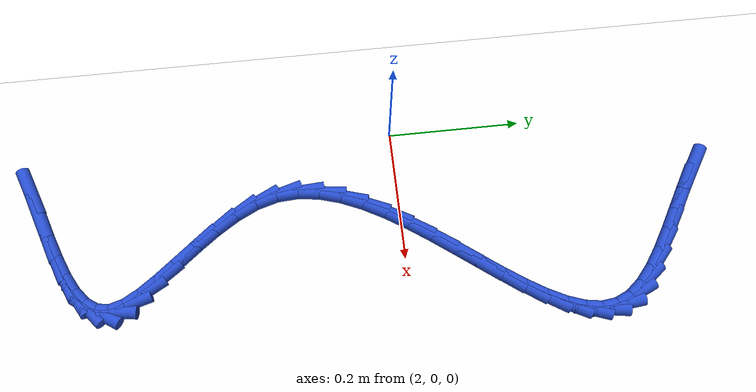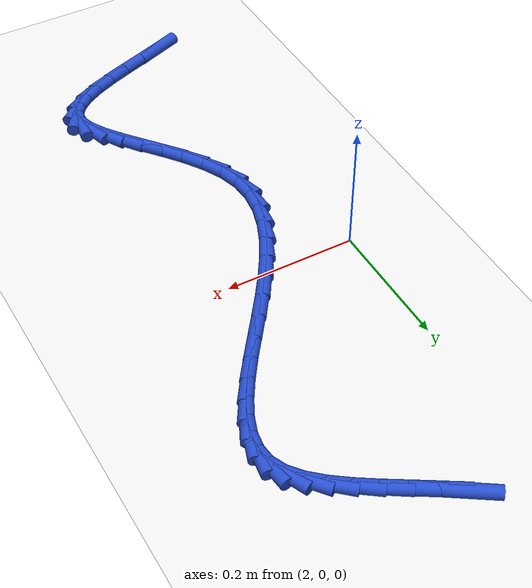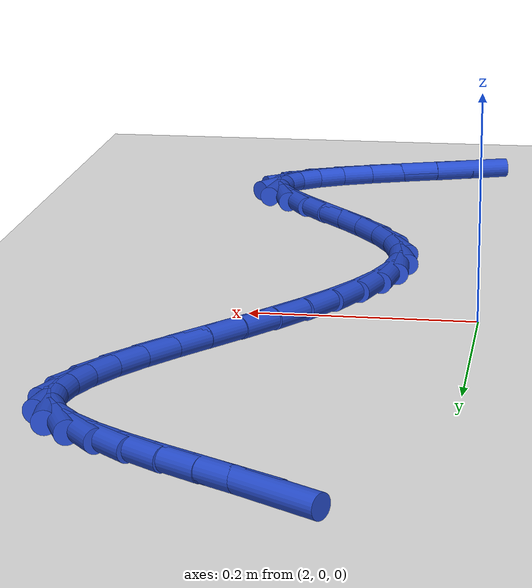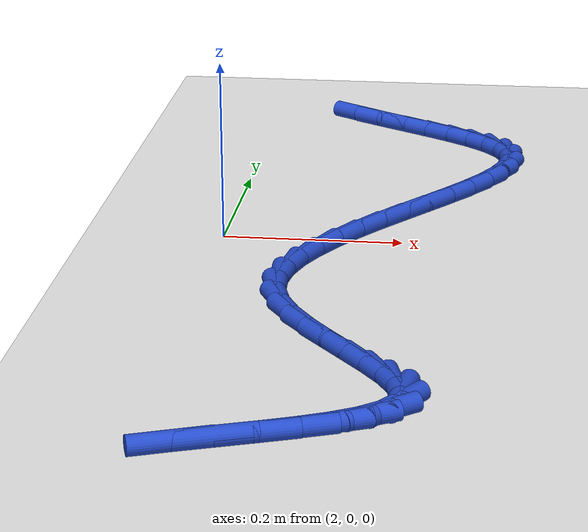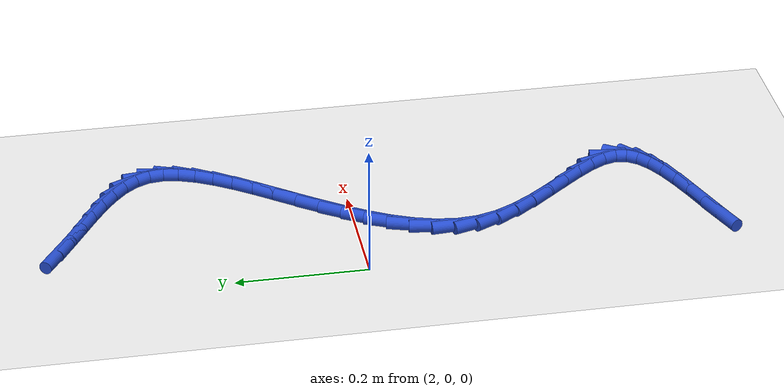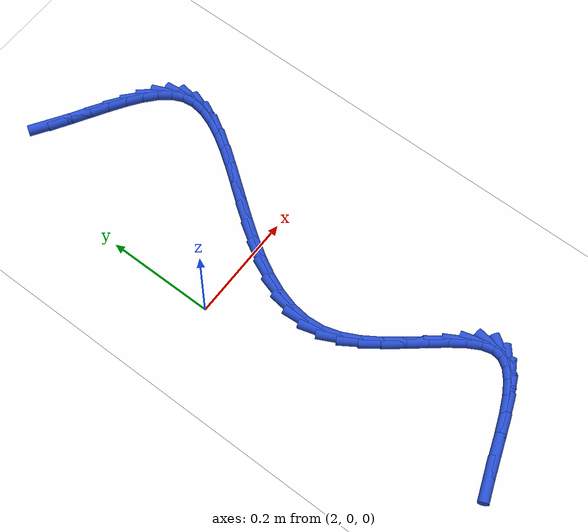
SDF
<sdf version="1.6">
 <world name="default">
  <model name="ground_plane">
   <static>1</static>
   <link name="link">
    <collision name="collision">
     <geometry><plane><normal>0 0 1</normal><size>100 100</size></plane></geometry>
     <surface><friction><ode><mu>100</mu><mu2>50</mu2></ode></friction></surface>
    </collision>
    <visual name="visual">
     <cast_shadows>0</cast_shadows>
     <geometry><plane><normal>0 0 1</normal><size>100 100</size></plane></geometry>
     <material>
      <script><uri>file://media/materials/scripts/gazebo.material</uri><name>Gazebo/WhiteGlow</name></script>
     </material>
    </visual>
   </link>
  </model>
  <model name="line">
   <link name="link_105">
    <pose>2.108060681411876 0.4472176859533394 0.01 0 1.57 -0.5757550613218255</pose>
    <collision name="collision">
     <geometry><cylinder><radius>0.01</radius><length>0.08</length></cylinder></geometry>
    </collision>
    <visual name="visual">
     <material>
      <script><name>Gazebo/Blue</name><uri>file://media/materials/scripts/gazebo.material</uri></script>
     </material>
     <geometry><cylinder><radius>0.01</radius><length>0.08</length></cylinder></geometry>
    </visual>
   </link>
   <link name="link_106">
    <pose>2.1381463226619006 0.42768854929734806 0.01 0 1.57 -0.5462385934227894</pose>
    <collision name="collision">
     <geometry><cylinder><radius>0.01</radius><length>0.08</length></cylinder></geometry>
    </collision>
    <visual name="visual">
     <material>
      <script><name>Gazebo/Blue</name><uri>file://media/materials/scripts/gazebo.material</uri></script>
     </material>
     <geometry><cylinder><radius>0.01</radius><length>0.08</length></cylinder></geometry>
    </visual>
   </link>
   <link name="link_107">
    <pose>2.1691179460862138 0.4088596052771137 0.01 0 1.57 -0.5429600679326003</pose>
    <collision name="collision">
     <geometry><cylinder><radius>0.01</radius><length>0.08</length></cylinder></geometry>
    </collision>
    <visual name="visual">
     <material>
      <script><name>Gazebo/Blue</name><uri>file://media/materials/scripts/gazebo.material</uri></script>
     </material>
     <geometry><cylinder><radius>0.01</radius><length>0.08</length></cylinder></geometry>
    </visual>
   </link>
   <link name="link_108">
    <pose>2.1997096694271723 0.39039871000961607 0.01 0 1.57 -0.5668483720270161</pose>
    <collision name="collision">
     <geometry><cylinder><radius>0.01</radius><length>0.08</length></cylinder></geometry>
    </collision>
    <visual name="visual">
     <material>
      <script><name>Gazebo/Blue</name><uri>file://media/materials/scripts/gazebo.material</uri></script>
     </material>
     <geometry><cylinder><radius>0.01</radius><length>0.08</length></cylinder></geometry>
    </visual>
   </link>
   <link name="link_109">
    <pose>2.228655610427135 0.3719737196118356 0.01 0 1.57 -0.623429596093039</pose>
    <collision name="collision">
     <geometry><cylinder><radius>0.01</radius><length>0.08</length></cylinder></geometry>
    </collision>
    <visual name="visual">
     <material>
      <script><name>Gazebo/Blue</name><uri>file://media/materials/scripts/gazebo.material</uri></script>
     </material>
     <geometry><cylinder><radius>0.01</radius><length>0.08</length></cylinder></geometry>
    </visual>
   </link>
   <link name="link_110">
    <pose>2.254689886828461 0.3532524902007521 0.01 0 1.57 -0.724630080030883</pose>
    <collision name="collision">
     <geometry><cylinder><radius>0.01</radius><length>0.08</length></cylinder></geometry>
    </collision>
    <visual name="visual">
     <material>
      <script><name>Gazebo/Blue</name><uri>file://media/materials/scripts/gazebo.material</uri></script>
     </material>
     <geometry><cylinder><radius>0.01</radius><length>0.08</length></cylinder></geometry>
    </visual>
   </link>
   <link name="link_111">
    <pose>2.2765466163735075 0.33390287789334594 0.01 0 1.57 -0.8911156726103272</pose>
    <collision name="collision">
     <geometry><cylinder><radius>0.01</radius><length>0.08</length></cylinder></geometry>
    </collision>
    <visual name="visual">
     <material>
      <script><name>Gazebo/Blue</name><uri>file://media/materials/scripts/gazebo.material</uri></script>
     </material>
     <geometry><cylinder><radius>0.01</radius><length>0.08</length></cylinder></geometry>
    </visual>
   </link>
   <link name="link_112">
    <pose>2.2929599168046333 0.3135927388065968 0.01 0 1.57 -1.1481544546390114</pose>
    <collision name="collision">
     <geometry><cylinder><radius>0.01</radius><length>0.08</length></cylinder></geometry>
    </collision>
    <visual name="visual">
     <material>
      <script><name>Gazebo/Blue</name><uri>file://media/materials/scripts/gazebo.material</uri></script>
     </material>
     <geometry><cylinder><radius>0.01</radius><length>0.08</length></cylinder></geometry>
    </visual>
   </link>
   <link name="link_113">
    <pose>2.3026746849159005 0.2919921262910703 0.01 0 1.57 -1.461423707057212</pose>
    <collision name="collision">
     <geometry><cylinder><radius>0.01</radius><length>0.08</length></cylinder></geometry>
    </collision>
    <visual name="visual">
     <material>
      <script><name>Gazebo/Blue</name><uri>file://media/materials/scripts/gazebo.material</uri></script>
     </material>
     <geometry><cylinder><radius>0.01</radius><length>0.08</length></cylinder></geometry>
    </visual>
   </link>
   <link name="link_114">
    <pose>2.305207336102497 0.26892836231695383 0.01 0 1.57 1.4141788300972489</pose>
    <collision name="collision">
     <geometry><cylinder><radius>0.01</radius><length>0.08</length></cylinder></geometry>
    </collision>
    <visual name="visual">
     <material>
      <script><name>Gazebo/Blue</name><uri>file://media/materials/scripts/gazebo.material</uri></script>
     </material>
     <geometry><cylinder><radius>0.01</radius><length>0.08</length></cylinder></geometry>
    </visual>
   </link>
   <link name="link_115">
    <pose>2.3013480045964734 0.24448840744638323 0.01 0 1.57 1.22220584439438</pose>
    <collision name="collision">
     <geometry><cylinder><radius>0.01</radius><length>0.08</length></cylinder></geometry>
    </collision>
    <visual name="visual">
     <material>
      <script><name>Gazebo/Blue</name><uri>file://media/materials/scripts/gazebo.material</uri></script>
     </material>
     <geometry><cylinder><radius>0.01</radius><length>0.08</length></cylinder></geometry>
    </visual>
   </link>
   <link name="link_116">
    <pose>2.292006026580781 0.2187835207175746 0.01 0 1.57 1.0927776454680684</pose>
    <collision name="collision">
     <geometry><cylinder><radius>0.01</radius><length>0.08</length></cylinder></geometry>
    </collision>
    <visual name="visual">
     <material>
      <script><name>Gazebo/Blue</name><uri>file://media/materials/scripts/gazebo.material</uri></script>
     </material>
     <geometry><cylinder><radius>0.01</radius><length>0.08</length></cylinder></geometry>
    </visual>
   </link>
   <link name="link_117">
    <pose>2.2780907382383724 0.19192496116874405 0.01 0 1.57 1.008567267322888</pose>
    <collision name="collision">
     <geometry><cylinder><radius>0.01</radius><length>0.08</length></cylinder></geometry>
    </collision>
    <visual name="visual">
     <material>
      <script><name>Gazebo/Blue</name><uri>file://media/materials/scripts/gazebo.material</uri></script>
     </material>
     <geometry><cylinder><radius>0.01</radius><length>0.08</length></cylinder></geometry>
    </visual>
   </link>
   <link name="link_118">
    <pose>2.2605114757522005 0.16402398783810754 0.01 0 1.57 0.9565545803721925</pose>
    <collision name="collision">
     <geometry><cylinder><radius>0.01</radius><length>0.08</length></cylinder></geometry>
    </collision>
    <visual name="visual">
     <material>
      <script><name>Gazebo/Blue</name><uri>file://media/materials/scripts/gazebo.material</uri></script>
     </material>
     <geometry><cylinder><radius>0.01</radius><length>0.08</length></cylinder></geometry>
    </visual>
   </link>
   <link name="link_119">
    <pose>2.240177575305218 0.13519185976388143 0.01 0 1.57 0.9285875099853691</pose>
    <collision name="collision">
     <geometry><cylinder><radius>0.01</radius><length>0.08</length></cylinder></geometry>
    </collision>
    <visual name="visual">
     <material>
      <script><name>Gazebo/Blue</name><uri>file://media/materials/scripts/gazebo.material</uri></script>
     </material>
     <geometry><cylinder><radius>0.01</radius><length>0.08</length></cylinder></geometry>
    </visual>
   </link>
   <link name="link_120">
    <pose>2.21799837308038 0.10553983598428224 0.01 0 1.57 0.9200690565457482</pose>
    <collision name="collision">
     <geometry><cylinder><radius>0.01</radius><length>0.08</length></cylinder></geometry>
    </collision>
    <visual name="visual">
     <material>
      <script><name>Gazebo/Blue</name><uri>file://media/materials/scripts/gazebo.material</uri></script>
     </material>
     <geometry><cylinder><radius>0.01</radius><length>0.08</length></cylinder></geometry>
    </visual>
   </link>
   <link name="link_121">
    <pose>2.1948832052606364 0.07517917553752519 0.01 0 1.57 0.9288833839066208</pose>
    <collision name="collision">
     <geometry><cylinder><radius>0.01</radius><length>0.08</length></cylinder></geometry>
    </collision>
    <visual name="visual">
     <material>
      <script><name>Gazebo/Blue</name><uri>file://media/materials/scripts/gazebo.material</uri></script>
     </material>
     <geometry><cylinder><radius>0.01</radius><length>0.08</length></cylinder></geometry>
    </visual>
   </link>
   <link name="link_122">
    <pose>2.171741408028941 0.044221137461826765 0.01 0 1.57 0.9547928345842446</pose>
    <collision name="collision">
     <geometry><cylinder><radius>0.01</radius><length>0.08</length></cylinder></geometry>
    </collision>
    <visual name="visual">
     <material>
      <script><name>Gazebo/Blue</name><uri>file://media/materials/scripts/gazebo.material</uri></script>
     </material>
     <geometry><cylinder><radius>0.01</radius><length>0.08</length></cylinder></geometry>
    </visual>
   </link>
   <link name="link_123">
    <pose>2.1494823175682454 0.012776980795403188 0.01 0 1.57 0.9991928040945052</pose>
    <collision name="collision">
     <geometry><cylinder><radius>0.01</radius><length>0.08</length></cylinder></geometry>
    </collision>
    <visual name="visual">
     <material>
      <script><name>Gazebo/Blue</name><uri>file://media/materials/scripts/gazebo.material</uri></script>
     </material>
     <geometry><cylinder><radius>0.01</radius><length>0.08</length></cylinder></geometry>
    </visual>
   </link>
   <link name="link_124">
    <pose>2.129015270061504 -0.01904203542352942 0.01 0 1.57 1.065080520678967</pose>
    <collision name="collision">
     <geometry><cylinder><radius>0.01</radius><length>0.08</length></cylinder></geometry>
    </collision>
    <visual name="visual">
     <material>
      <script><name>Gazebo/Blue</name><uri>file://media/materials/scripts/gazebo.material</uri></script>
     </material>
     <geometry><cylinder><radius>0.01</radius><length>0.08</length></cylinder></geometry>
    </visual>
   </link>
   <link name="link_125">
    <pose>2.1112496016916693 -0.05112465215675499 0.01 0 1.57 1.1570285639610185</pose>
    <collision name="collision">
     <geometry><cylinder><radius>0.01</radius><length>0.08</length></cylinder></geometry>
    </collision>
    <visual name="visual">
     <material>
      <script><name>Gazebo/Blue</name><uri>file://media/materials/scripts/gazebo.material</uri></script>
     </material>
     <geometry><cylinder><radius>0.01</radius><length>0.08</length></cylinder></geometry>
    </visual>
   </link>
   <link name="link_126">
    <pose>2.097094648641694 -0.08335961036605735 0.01 0 1.57 1.2807019255664314</pose>
    <collision name="collision">
     <geometry><cylinder><radius>0.01</radius><length>0.08</length></cylinder></geometry>
    </collision>
    <visual name="visual">
     <material>
      <script><name>Gazebo/Blue</name><uri>file://media/materials/scripts/gazebo.material</uri></script>
     </material>
     <geometry><cylinder><radius>0.01</radius><length>0.08</length></cylinder></geometry>
    </visual>
   </link>
   <link name="link_127">
    <pose>2.0874597470945306 -0.11563565101322042 0.01 0 1.57 1.4409488019627914</pose>
    <collision name="collision">
     <geometry><cylinder><radius>0.01</radius><length>0.08</length></cylinder></geometry>
    </collision>
    <visual name="visual">
     <material>
      <script><name>Gazebo/Blue</name><uri>file://media/materials/scripts/gazebo.material</uri></script>
     </material>
     <geometry><cylinder><radius>0.01</radius><length>0.08</length></cylinder></geometry>
    </visual>
   </link>
   <link name="link_128">
    <pose>2.0832542332331325 -0.14784151506002802 0.01 0 1.57 -1.5042826258547868</pose>
    <collision name="collision">
     <geometry><cylinder><radius>0.01</radius><length>0.08</length></cylinder></geometry>
    </collision>
    <visual name="visual">
     <material>
      <script><name>Gazebo/Blue</name><uri>file://media/materials/scripts/gazebo.material</uri></script>
     </material>
     <geometry><cylinder><radius>0.01</radius><length>0.08</length></cylinder></geometry>
    </visual>
   </link>
   <link name="link_129">
    <pose>2.085387443240452 -0.17986594346826407 0.01 0 1.57 -1.2864539026590542</pose>
    <collision name="collision">
     <geometry><cylinder><radius>0.01</radius><length>0.08</length></cylinder></geometry>
    </collision>
    <visual name="visual">
     <material>
      <script><name>Gazebo/Blue</name><uri>file://media/materials/scripts/gazebo.material</uri></script>
     </material>
     <geometry><cylinder><radius>0.01</radius><length>0.08</length></cylinder></geometry>
    </visual>
   </link>
   <link name="link_130">
    <pose>2.0946600086593783 -0.21159286742573957 0.01 0 1.57 -1.1062604865640426</pose>
    <collision name="collision">
     <geometry><cylinder><radius>0.01</radius><length>0.08</length></cylinder></geometry>
    </collision>
    <visual name="visual">
     <material>
      <script><name>Gazebo/Blue</name><uri>file://media/materials/scripts/gazebo.material</uri></script>
     </material>
     <geometry><cylinder><radius>0.01</radius><length>0.08</length></cylinder></geometry>
    </visual>
   </link>
   <link name="link_131">
    <pose>2.110316975455866 -0.2428373892734381 0.01 0 1.57 -0.987944264954189</pose>
    <collision name="collision">
     <geometry><cylinder><radius>0.01</radius><length>0.08</length></cylinder></geometry>
    </collision>
    <visual name="visual">
     <material>
      <script><name>Gazebo/Blue</name><uri>file://media/materials/scripts/gazebo.material</uri></script>
     </material>
     <geometry><cylinder><radius>0.01</radius><length>0.08</length></cylinder></geometry>
    </visual>
   </link>
   <link name="link_132">
    <pose>2.1304411811477237 -0.2733631879729766 0.01 0 1.57 -0.9172166625322334</pose>
    <collision name="collision">
     <geometry><cylinder><radius>0.01</radius><length>0.08</length></cylinder></geometry>
    </collision>
    <visual name="visual">
     <material>
      <script><name>Gazebo/Blue</name><uri>file://media/materials/scripts/gazebo.material</uri></script>
     </material>
     <geometry><cylinder><radius>0.01</radius><length>0.08</length></cylinder></geometry>
    </visual>
   </link>
   <link name="link_133">
    <pose>2.1530875361104087 -0.30293270681431844 0.01 0 1.57 -0.884920176280227</pose>
    <collision name="collision">
     <geometry><cylinder><radius>0.01</radius><length>0.08</length></cylinder></geometry>
    </collision>
    <visual name="visual">
     <material>
      <script><name>Gazebo/Blue</name><uri>file://media/materials/scripts/gazebo.material</uri></script>
     </material>
     <geometry><cylinder><radius>0.01</radius><length>0.08</length></cylinder></geometry>
    </visual>
   </link>
   <link name="link_134">
    <pose>2.1763109507193747 -0.3313083890874261 0.01 0 1.57 -0.8893041275013062</pose>
    <collision name="collision">
     <geometry><cylinder><radius>0.01</radius><length>0.08</length></cylinder></geometry>
    </collision>
    <visual name="visual">
     <material>
      <script><name>Gazebo/Blue</name><uri>file://media/materials/scripts/gazebo.material</uri></script>
     </material>
     <geometry><cylinder><radius>0.01</radius><length>0.08</length></cylinder></geometry>
    </visual>
   </link>
   <link name="link_135">
    <pose>2.198166335350076 -0.35825267808226263 0.01 0 1.57 -0.937866995740834</pose>
    <collision name="collision">
     <geometry><cylinder><radius>0.01</radius><length>0.08</length></cylinder></geometry>
    </collision>
    <visual name="visual">
     <material>
      <script><name>Gazebo/Blue</name><uri>file://media/materials/scripts/gazebo.material</uri></script>
     </material>
     <geometry><cylinder><radius>0.01</radius><length>0.08</length></cylinder></geometry>
    </visual>
   </link>
   <link name="link_136">
    <pose>2.2167086003779692 -0.3835280170887907 0.01 0 1.57 -1.0538970849753946</pose>
    <collision name="collision">
     <geometry><cylinder><radius>0.01</radius><length>0.08</length></cylinder></geometry>
    </collision>
    <visual name="visual">
     <material>
      <script><name>Gazebo/Blue</name><uri>file://media/materials/scripts/gazebo.material</uri></script>
     </material>
     <geometry><cylinder><radius>0.01</radius><length>0.08</length></cylinder></geometry>
    </visual>
   </link>
   <link name="link_137">
    <pose>2.2299926561785064 -0.4068968493969732 0.01 0 1.57 -1.2917764705980517</pose>
    <collision name="collision">
     <geometry><cylinder><radius>0.01</radius><length>0.08</length></cylinder></geometry>
    </collision>
    <visual name="visual">
     <material>
      <script><name>Gazebo/Blue</name><uri>file://media/materials/scripts/gazebo.material</uri></script>
     </material>
     <geometry><cylinder><radius>0.01</radius><length>0.08</length></cylinder></geometry>
    </visual>
   </link>
   <link name="link_138">
    <pose>2.2360734131271447 -0.4281216182967731 0.01 0 1.57 1.4252099396137519</pose>
    <collision name="collision">
     <geometry><cylinder><radius>0.01</radius><length>0.08</length></cylinder></geometry>
    </collision>
    <visual name="visual">
     <material>
      <script><name>Gazebo/Blue</name><uri>file://media/materials/scripts/gazebo.material</uri></script>
     </material>
     <geometry><cylinder><radius>0.01</radius><length>0.08</length></cylinder></geometry>
    </visual>
   </link>
   <link name="link_139">
    <pose>2.233301401047243 -0.44702723009358497 0.01 0 1.57 0.9809669293725667</pose>
    <collision name="collision">
     <geometry><cylinder><radius>0.01</radius><length>0.08</length></cylinder></geometry>
    </collision>
    <visual name="visual">
     <material>
      <script><name>Gazebo/Blue</name><uri>file://media/materials/scripts/gazebo.material</uri></script>
     </material>
     <geometry><cylinder><radius>0.01</radius><length>0.08</length></cylinder></geometry>
    </visual>
   </link>
   <link name="link_140">
    <pose>2.2220334075860153 -0.46386250404676954 0.01 0 1.57 0.6855208050886</pose>
    <collision name="collision">
     <geometry><cylinder><radius>0.01</radius><length>0.08</length></cylinder></geometry>
    </collision>
    <visual name="visual">
     <material>
      <script><name>Gazebo/Blue</name><uri>file://media/materials/scripts/gazebo.material</uri></script>
     </material>
     <geometry><cylinder><radius>0.01</radius><length>0.08</length></cylinder></geometry>
    </visual>
   </link>
   <link name="link_141">
    <pose>2.2034600243496216 -0.4790524383170556 0.01 0 1.57 0.514988860215341</pose>
    <collision name="collision">
     <geometry><cylinder><radius>0.01</radius><length>0.08</length></cylinder></geometry>
    </collision>
    <visual name="visual">
     <material>
      <script><name>Gazebo/Blue</name><uri>file://media/materials/scripts/gazebo.material</uri></script>
     </material>
     <geometry><cylinder><radius>0.01</radius><length>0.08</length></cylinder></geometry>
    </visual>
   </link>
   <link name="link_142">
    <pose>2.178774561397824 -0.49302260546178295 0.01 0 1.57 0.41874705222963643</pose>
    <collision name="collision">
     <geometry><cylinder><radius>0.01</radius><length>0.08</length></cylinder></geometry>
    </collision>
    <visual name="visual">
     <material>
      <script><name>Gazebo/Blue</name><uri>file://media/materials/scripts/gazebo.material</uri></script>
     </material>
     <geometry><cylinder><radius>0.01</radius><length>0.08</length></cylinder></geometry>
    </visual>
   </link>
   <link name="link_143">
    <pose>2.149170328790382 -0.5061985780382915 0.01 0 1.57 0.3668663802417402</pose>
    <collision name="collision">
     <geometry><cylinder><radius>0.01</radius><length>0.08</length></cylinder></geometry>
    </collision>
    <visual name="visual">
     <material>
      <script><name>Gazebo/Blue</name><uri>file://media/materials/scripts/gazebo.material</uri></script>
     </material>
     <geometry><cylinder><radius>0.01</radius><length>0.08</length></cylinder></geometry>
    </visual>
   </link>
   <link name="link_144">
    <pose>2.1158406365870595 -0.5190059286039215 0.01 0 1.57 0.3444205225331051</pose>
    <collision name="collision">
     <geometry><cylinder><radius>0.01</radius><length>0.08</length></cylinder></geometry>
    </collision>
    <visual name="visual">
     <material>
      <script><name>Gazebo/Blue</name><uri>file://media/materials/scripts/gazebo.material</uri></script>
     </material>
     <geometry><cylinder><radius>0.01</radius><length>0.08</length></cylinder></geometry>
    </visual>
   </link>
   <link name="link_145">
    <pose>2.079978794847616 -0.5318702297160124 0.01 0 1.57 0.344474270679976</pose>
    <collision name="collision">
     <geometry><cylinder><radius>0.01</radius><length>0.08</length></cylinder></geometry>
    </collision>
    <visual name="visual">
     <material>
      <script><name>Gazebo/Blue</name><uri>file://media/materials/scripts/gazebo.material</uri></script>
     </material>
     <geometry><cylinder><radius>0.01</radius><length>0.08</length></cylinder></geometry>
    </visual>
   </link>
   <link name="link_146">
    <pose>2.04277811363181 -0.5452170539319047 0.01 0 1.57 0.364628656966926</pose>
    <collision name="collision">
     <geometry><cylinder><radius>0.01</radius><length>0.08</length></cylinder></geometry>
    </collision>
    <visual name="visual">
     <material>
      <script><name>Gazebo/Blue</name><uri>file://media/materials/scripts/gazebo.material</uri></script>
     </material>
     <geometry><cylinder><radius>0.01</radius><length>0.08</length></cylinder></geometry>
    </visual>
   </link>
  </model>
 </world>
</sdf>
